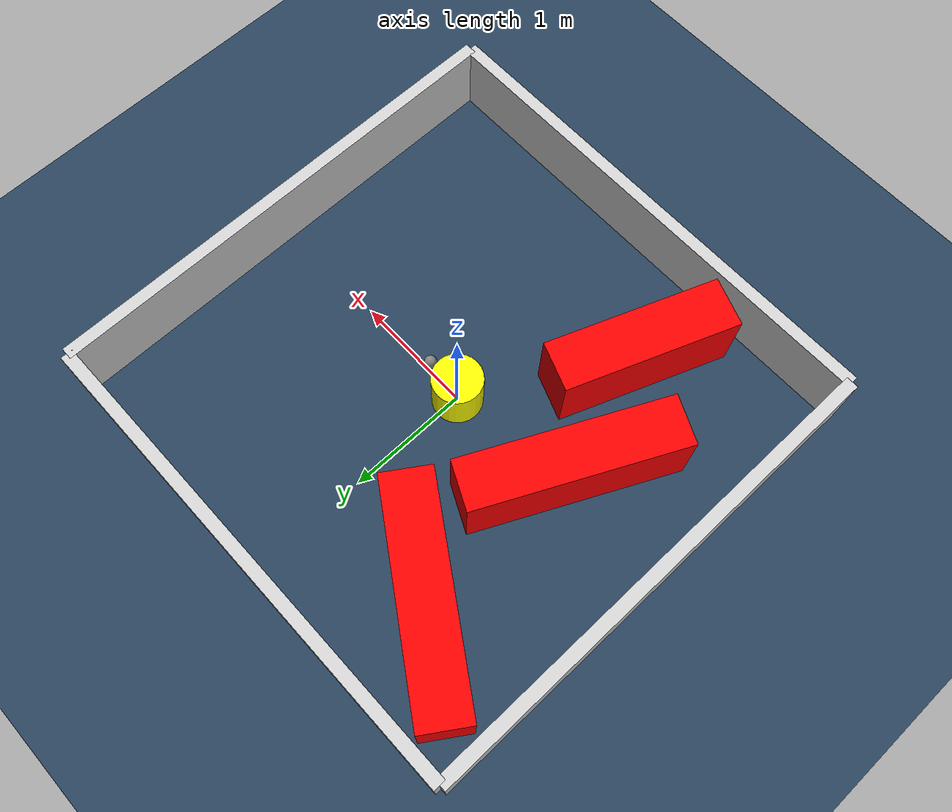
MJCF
<?xml version="1.0" ?>
<mujoco model="generated_environment">
  <option timestep="0.01" integrator="RK4" cone="elliptic"/>
  <default>
    <geom density="1"/>
  </default>
  <asset>
    <texture builtin="gradient" height="3072" rgb1="0.3 0.5 0.7" rgb2="0 0 0" type="skybox" width="512"/>
    <texture builtin="checker" height="300" mark="edge" markrgb="0.8 0.8 0.8" name="groundplane" rgb1="0.2 0.3 0.4" rgb2="0.1 0.2 0.3" type="2d" width="300"/>
    <material name="groundplane" reflectance="0.2" texrepeat="5 5" texture="groundplane" texuniform="true"/>
    <material name="robot" rgba="0.0 1.0 0.0 1"/>
  </asset>
  <worldbody>
    <light dir="0 0 -1" directional="true" pos="0 0 1.5"/>
    <geom condim="4" friction="1.0 0.005 0.001" material="groundplane" name="floor" size="0 0 0.05" type="plane"/>
    <body name="walls">
      <geom name="wall_1" condim="4" pos="-2.0 0.0 0.3" rgba="0.800000011920929 0.800000011920929 0.800000011920929 1.0" size="0.05 2.0 0.3" type="box"/>
      <geom name="wall_2" condim="4" pos="2.0 0.0 0.3" rgba="0.800000011920929 0.800000011920929 0.800000011920929 1.0" size="0.05 2.0 0.3" type="box"/>
      <geom name="wall_3" condim="4" pos="0.0 -2.0 0.3" rgba="0.800000011920929 0.800000011920929 0.800000011920929 1.0" size="2.0 0.05 0.3" type="box"/>
      <geom name="wall_4" condim="4" pos="0.0 2.0 0.3" rgba="0.800000011920929 0.800000011920929 0.800000011920929 1.0" size="2.0 0.05 0.3" type="box"/>
    </body>
    <body name="robot">
      <joint name="joint_x" type="slide" pos="0 0 0" axis="1 0 0"/>
      <joint name="joint_y" type="slide" pos="0 0 0" axis="0 1 0"/>
      <geom name="robot" type="sphere" pos="0.3 0.0 0.2" size="0.05" mass="5." friction="1.0 0.005 0.0001" condim="4" rgba="0.5 0.5 0.5 1.0"/>
      <site name="sensor_ball"/>
    </body>
    <body name="obstacle_movable_1">
      <geom name="obstacle_movable_1" condim="4" pos="0.0 0.0 0.2" euler="0 0 0.0" friction="1.0 0.005 0.001" rgba="1.0 1.0 0.0 1.0" size="0.2 0.2 0.0" type="cylinder" mass="0.1"/>
      <joint type="free"/>
    </body>
    <body name="obstacle_2_static">
      <geom name="obstacle_2_static" condim="4" pos="-0.71905329737288 -1.1777224918444975 0.3" euler="0 0 249.04002676816083" friction="1.0 0.005 0.001" rgba="1 0 0 1" size="0.7047468450700312 0.2 0.3" type="box"/>
    </body>
    <body name="obstacle_3_static">
      <geom name="obstacle_3_static" condim="4" pos="-1.0471134299860616 1.2643371970051336 0.3" euler="0 0 326.51724976333946" friction="1.0 0.005 0.001" rgba="1 0 0 1" size="0.8837765238917148 0.2 0.3" type="box"/>
    </body>
    <body name="obstacle_4_static">
      <geom name="obstacle_4_static" condim="4" pos="-1.0210765865444307 -0.16747720071922867 0.3" euler="0 0 64.08155851604724" friction="1.0 0.005 0.001" rgba="1 0 0 1" size="0.8462350029765644 0.2 0.3" type="box"/>
    </body>
  </worldbody>
  <actuator>
    <motor name="actuator_x" joint="joint_x" gear="1" ctrlrange="-1 1"/>
    <motor name="actuator_y" joint="joint_y" gear="1" ctrlrange="-1 1"/>
  </actuator>
</mujoco>
